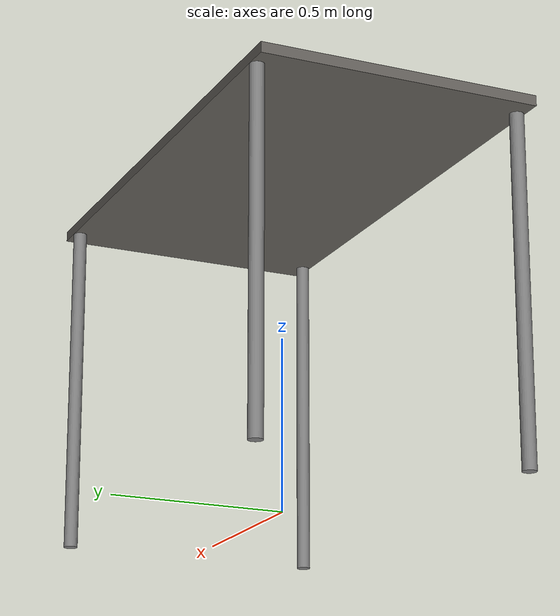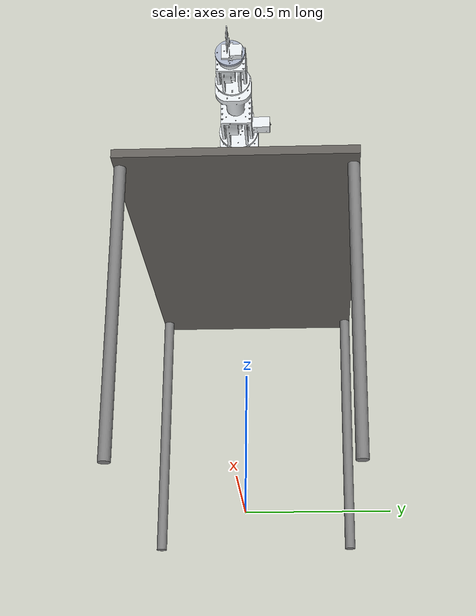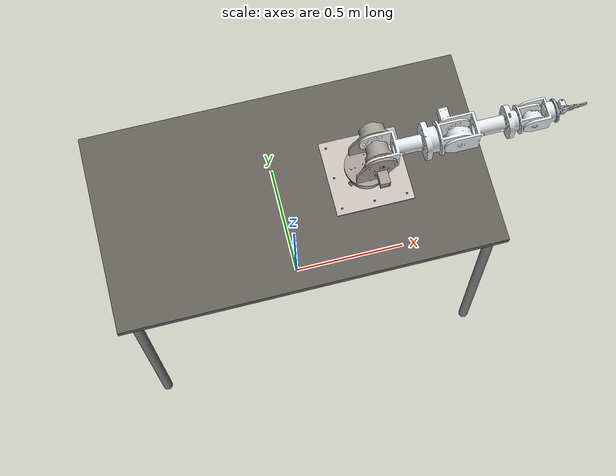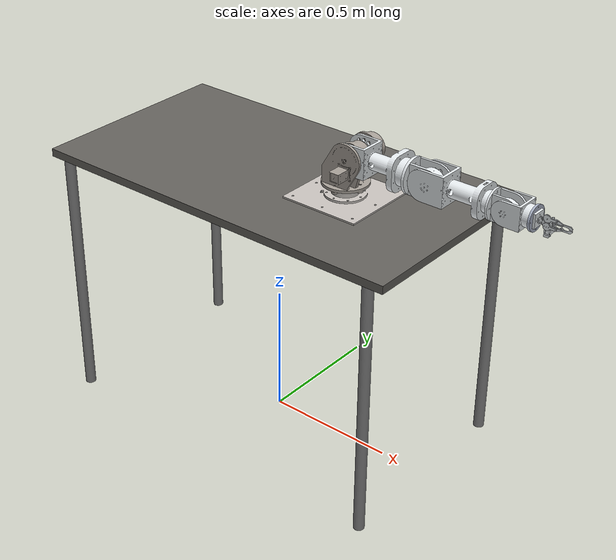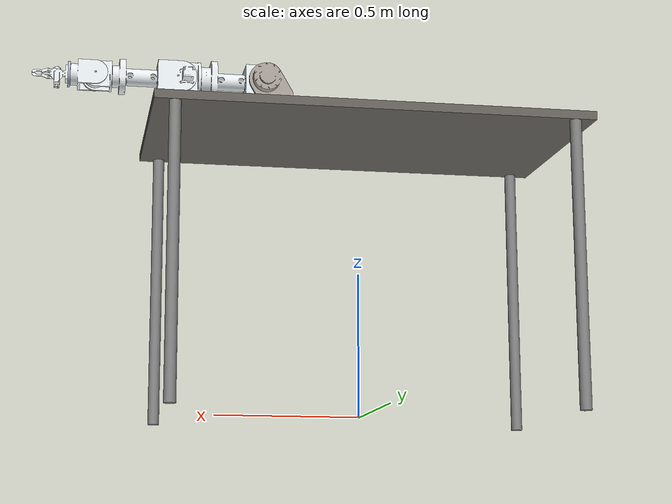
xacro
<?xml version="1.0" encoding="utf-8"?>

<robot xmlns:xacro="http://www.ros.org/wiki/xacro" name="daadbot">

  <xacro:arg name="is_sim" default="true"/>

  <xacro:arg name = "is_ignition" default="true"/>

  <xacro:include filename = "$(find daadbot_desc)/urdf/urdf_table_effort/daadbot_gazebo.xacro"/>
  <xacro:include filename = "$(find daadbot_desc)/urdf/urdf_table_effort/daadbot_ros2_control.xacro"/>
  <xacro:include filename = "$(find daadbot_desc)/urdf/urdf_table_effort/table.xacro"/>

  <xacro:property name='PI' value='3.141592653589793'/>
  <xacro:property name='velocity' value='20.0'/>
  <xacro:property name='effort' value='200.0'/>

  <link name="world"/>

  <!-- Attach the Table to the World -->
  <joint name="table_joint" type="fixed">
    <parent link="world"/>
    <child link="table_top"/>
    <origin xyz="0 0 0" rpy="0 0 0"/> <!-- Adjust height of table -->
  </joint>

  <!-- Attach Daadbot to the Table -->
  <joint name="base_joint" type="fixed">
    <parent link="table_top"/>
    <child link="base_link"/>
    <origin xyz="0.3 0 1.017" rpy="0 0 0"/> <!-- Adjust position of the robot on the table -->
  </joint>
  <link
    name="base_link">
    <inertial>
      <origin
        xyz="-0.00246645540256236 -0.00131466478904116 0.00320374562257973"
        rpy="0 0 0" />
      <mass
        value="6.91122989464636" />
      <inertia
        ixx="0.0466171750852481"
        ixy="0.00010076855342015"
        ixz="5.14819747192778E-08"
        iyy="0.0464821203083076"
        iyz="-1.44621889265211E-07"
        izz="0.0929840869855057" />
    </inertial>
    <visual>
      <origin
        xyz="0 0 0"
        rpy="0 0 0" />
      <geometry>
        <mesh
          filename="package://daadbot_desc/meshes/base_link.STL" />
      </geometry>
      <material
        name="">
        <color
          rgba="0.776470588235294 0.756862745098039 0.737254901960784 1" />
      </material>
    </visual>
    <collision>
      <origin
        xyz="0 0 0"
        rpy="0 0 0" />
      <geometry>
        <mesh
          filename="package://daadbot_desc/meshes/base_link.STL" />
      </geometry>
    </collision>
  </link>
  <link
    name="Link_1">
    <inertial>
      <origin
        xyz="0.0222146013900772 2.73568109690481E-06 0.0747841784291177"
        rpy="0 0 0" />
      <mass
        value="2.34948803406793" />
      <inertia
        ixx="0.00332922517000865"
        ixy="1.64875308454708E-07"
        ixz="-0.000433929392474112"
        iyy="0.00524724735039028"
        iyz="2.38505609352415E-07"
        izz="0.00419520671173006" />
    </inertial>
    <visual>
      <origin
        xyz="0 0 0"
        rpy="0 0 0" />
      <geometry>
        <mesh
          filename="package://daadbot_desc/meshes/Link_1.STL" />
      </geometry>
      <material
        name="">
        <color
          rgba="0.647058823529412 0.619607843137255 0.588235294117647 1" />
      </material>
    </visual>
    <collision>
      <origin
        xyz="0 0 0"
        rpy="0 0 0" />
      <geometry>
        <mesh
          filename="package://daadbot_desc/meshes/Link_1.STL" />
      </geometry>
    </collision>
  </link>
  <joint
    name="joint_1"
    type="revolute">
    <origin
      xyz="-0.0029638 -0.0015759 0.04796"
      rpy="0 0 0" />
    <parent
      link="base_link" />
    <child
      link="Link_1" />
    <axis
      xyz="0 0 -1" />
    <limit
      lower="-0.1"
      upper="3.2"
      effort="${effort}"
      velocity="12.776" />
  </joint>
  <link
    name="Link_2">
    <inertial>
      <origin
        xyz="0.121210588587965 0.000230649813345946 -0.049540637756618"
        rpy="0 0 0" />
      <mass
        value="2.24401700155026" />
      <inertia
        ixx="0.00389001580470153"
        ixy="1.8291659115195E-06"
        ixz="2.04233321611583E-07"
        iyy="0.00259728697678572"
        iyz="3.29392581309982E-08"
        izz="0.00312685277067708" />
    </inertial>
    <visual>
      <origin
        xyz="0 0 0"
        rpy="0 0 0" />
      <geometry>
        <mesh
          filename="package://daadbot_desc/meshes/Link_2.STL" />
      </geometry>
      <material
        name="">
        <color
          rgba="0.898039215686275 0.917647058823529 0.929411764705882 1" />
      </material>
    </visual>
    <collision>
      <origin
        xyz="0 0 0"
        rpy="0 0 0" />
      <geometry>
        <mesh
          filename="package://daadbot_desc/meshes/Link_2.STL" />
      </geometry>
    </collision>
  </link>
  <joint
    name="joint_2"
    type="revolute">
    <origin
      xyz="0.0400000000000002 -0.050000000000002 0.114463048454132"
      rpy="1.5707963267949 0 0" />
    <parent
      link="Link_1" />
    <child
      link="Link_2" />
    <axis
      xyz="0 0 -1" />
    <limit
      lower="-3.4907"
      upper="0.5236"
      effort="${effort}"
      velocity="12.776" />
  </joint>

  <link
    name="Link_3">
    <inertial>
      <origin
        xyz="-0.00448997206818821 -2.34751712904213E-05 0.0488571768392556"
        rpy="0 0 0" />
      <mass
        value="1.2718719681393" />
      <inertia
        ixx="0.00206983011422612"
        ixy="9.27500479472452E-08"
        ixz="3.38378548754623E-06"
        iyy="0.00129565231901482"
        iyz="2.88989653562542E-07"
        izz="0.00156994991003151" />
    </inertial>
    <visual>
      <origin
        xyz="0 0 0"
        rpy="0 0 0" />
      <geometry>
        <mesh
          filename="package://daadbot_desc/meshes/Link_3.STL" />
      </geometry>
      <material
        name="">
        <color
          rgba="0.898039215686275 0.917647058823529 0.929411764705882 1" />
      </material>
    </visual>
    <collision>
      <origin
        xyz="0 0 0"
        rpy="0 0 0" />
      <geometry>
        <mesh
          filename="package://daadbot_desc/meshes/Link_3.STL" />
      </geometry>
    </collision>
  </link>
  <joint
    name="joint_3"
    type="revolute">
    <origin
      xyz="0.234499999999998 0 -0.0495000000000002"
      rpy="0 1.5707963267949 0" />
    <parent
      link="Link_2" />
    <child
      link="Link_3" />
    <axis
      xyz="0 0 -1" />
    <limit
      lower="-0.1"
      upper="3.2"
      effort="${effort}"
      velocity="12.776" />
  </joint>
  <link
    name="Link_4">
    <inertial>
      <origin
        xyz="-0.119169680650385 -0.000128811902195713 0.0378163924527294"
        rpy="0 0 0" />
      <mass
        value="2.67615775175726" />
      <inertia
        ixx="0.00308017562479927"
        ixy="2.47453551729311E-06"
        ixz="-7.09348932448939E-07"
        iyy="0.00238129778603005"
        iyz="-7.47320677385655E-07"
        izz="0.00293128138362422" />
    </inertial>
    <visual>
      <origin
        xyz="0 0 0"
        rpy="0 0 0" />
      <geometry>
        <mesh
          filename="package://daadbot_desc/meshes/Link_4.STL" />
      </geometry>
      <material
        name="">
        <color
          rgba="0.898039215686275 0.917647058823529 0.929411764705882 1" />
      </material>
    </visual>
    <collision>
      <origin
        xyz="0 0 0"
        rpy="0 0 0" />
      <geometry>
        <mesh
          filename="package://daadbot_desc/meshes/Link_4.STL" />
      </geometry>
    </collision>
  </link>
  <joint
    name="joint_4"
    type="revolute">
    <origin
      xyz="-0.0324999999999996 0 0.0750000000000004"
      rpy="0 1.5707963267949 0" />
    <parent
      link="Link_3" />
    <child
      link="Link_4" />
    <axis
      xyz="0 0 -1" />
    <limit
      lower="-1.9199"
      upper="1.9199"
      effort="${effort}"
      velocity="12.77581" />
  </joint>
  <link
    name="Link_5">
    <inertial>
      <origin
        xyz="0.00685541523757274 3.79292913340323E-05 0.0488580132405974"
        rpy="0 0 0" />
      <mass
        value="1.29018300951353" />
      <inertia
        ixx="0.00112308173661534"
        ixy="1.28316182440177E-06"
        ixz="-8.91005390036956E-07"
        iyy="0.000690097277055795"
        iyz="-3.23958303943101E-07"
        izz="0.000815216487439054" />
    </inertial>
    <visual>
      <origin
        xyz="0 0 0"
        rpy="0 0 0" />
      <geometry>
        <mesh
          filename="package://daadbot_desc/meshes/Link_5.STL" />
      </geometry>
      <material
        name="">
        <color
          rgba="0.898039215686275 0.917647058823529 0.929411764705882 1" />
      </material>
    </visual>
    <collision>
      <origin
        xyz="0 0 0"
        rpy="0 0 0" />
      <geometry>
        <mesh
          filename="package://daadbot_desc/meshes/Link_5.STL" />
      </geometry>
    </collision>
  </link>
  <joint
    name="joint_5"
    type="revolute">
    <origin
      xyz="-0.2284999036789 0 0.0330000000000004"
      rpy="3.14159265358979 1.5707963267949 0" />
    <parent
      link="Link_4" />
    <child
      link="Link_5" />
    <axis
      xyz="0 0 -1" />
    <limit
      lower="-0.1"
      upper="3.4"
      effort="15"
      velocity="19.896753" />
  </joint>
  <link
    name="Link_6">
    <inertial>
      <origin
        xyz="-0.0534048711825299 4.35092388909042E-05 0.0268001409986631"
        rpy="0 0 0" />
      <mass
        value="1.30596061805535" />
      <inertia
        ixx="0.000961791856097317"
        ixy="1.00752377127578E-06"
        ixz="-2.55794494605017E-06"
        iyy="0.000676134530899485"
        iyz="-2.71811927605635E-06"
        izz="0.00084422746855334" />
    </inertial>
    <visual>
      <origin
        xyz="0 0 0"
        rpy="0 0 0" />
      <geometry>
        <mesh
          filename="package://daadbot_desc/meshes/link_6.STL" />
      </geometry>
      <material
        name="">
        <color
          rgba="0.898039215686275 0.917647058823529 0.929411764705882 1" />
      </material>
    </visual>
    <collision>
      <origin
        xyz="0 0 0"
        rpy="0 0 0" />
      <geometry>
        <mesh
          filename="package://daadbot_desc/meshes/link_6.STL" />
      </geometry>
    </collision>
  </link>
  <joint
    name="joint_6"
    type="revolute">
    <origin
      xyz="0.0265000104908596 0 0.0575000000000075"
      rpy="3.14159265358979 1.5707963267949 0" />
    <parent
      link="Link_5" />
    <child
      link="Link_6" />
    <axis
      xyz="0 0 -1" />
    <limit
      lower="-1.5708"
      upper="1.5708"
      effort="15"
      velocity="19.897" />
  </joint>
  <link
    name="Link_7">
    <inertial>
      <origin
        xyz="-1.22738236721376E-06 1.16355040356286E-05 -0.00396913177271019"
        rpy="0 0 0" />
      <mass
        value="0.131686510129341" />
      <inertia
        ixx="6.91193962095496E-05"
        ixy="1.32697088081543E-10"
        ixz="8.85654326869473E-10"
        iyy="6.91388743027247E-05"
        iyz="2.09447730326603E-11"
        izz="0.000136853375303708" />
    </inertial>
    <visual>
      <origin
        xyz="0 0 0"
        rpy="0 0 0" />
      <geometry>
        <mesh
          filename="package://daadbot_desc/meshes/Link_7.STL" />
      </geometry>
      <material
        name="">
        <color
          rgba="0.666666666666667 0.698039215686274 0.768627450980392 1" />
      </material>
    </visual>
    <collision>
      <origin
        xyz="0 0 0"
        rpy="0 0 0" />
      <geometry>
        <mesh
          filename="package://daadbot_desc/meshes/Link_7.STL" />
      </geometry>
    </collision>
  </link>
  <joint
    name="joint_7"
    type="revolute">
    <origin
      xyz="-0.0864999036793499 0 0.0280000000004628"
      rpy="0 1.5707963267949 0" />
    <parent
      link="Link_6" />
    <child
      link="Link_7" />
    <axis
      xyz="0 0 -1" />
    <limit
      lower="-0.1"
      upper="3.4"
      effort="15"
      velocity="19.897" />
  </joint>
  <link
    name="endeffector">
    <inertial>
      <origin
        xyz="0.0115230217195728 -0.0136127070797983 0.0256571894660979"
        rpy="0 0 0" />
      <mass
        value="0.154057788286255" />
      <inertia
        ixx="3.1964247663854E-05"
        ixy="1.07138220152465E-07"
        ixz="4.30086683390955E-12"
        iyy="2.53636526523542E-05"
        iyz="-9.8230347105402E-08"
        izz="4.73802906093003E-05" />
    </inertial>
    <visual>
      <origin
        xyz="0 0 0"
        rpy="0 0 0" />
      <geometry>
        <mesh
          filename="package://daadbot_desc/meshes/endeffector.STL" />
      </geometry>
      <material
        name="">
        <color
          rgba="0.898039215686275 0.917647058823529 0.929411764705882 1" />
      </material>
    </visual>
    <collision>
      <origin
        xyz="0 0 0"
        rpy="0 0 0" />
      <geometry>
        <mesh
          filename="package://daadbot_desc/meshes/endeffector.STL" />
      </geometry>
    </collision>
  </link>
  <joint
    name="endeffector_joint"
    type="fixed">
    <origin
      xyz="0 0 -0.00799999999954315"
      rpy="3.14159265357033 0 -3.14159265358979" />
    <parent
      link="Link_7" />
    <child
      link="endeffector" />
    <axis
      xyz="0 0 0" />
  </joint>
  <link
    name="gear1">
    <inertial>
      <origin
        xyz="-0.00580763486929181 0.000405747920981692 -0.00150000000000011"
        rpy="0 0 0" />
      <mass
        value="0.00530003886474417" />
      <inertia
        ixx="1.81056909473447E-07"
        ixy="-3.82652046422796E-08"
        ixz="2.51961968784482E-22"
        iyy="7.53619126673464E-07"
        iyz="-2.84205585058754E-24"
        izz="9.26725977849795E-07" />
    </inertial>
    <visual>
      <origin
        xyz="0 0 0"
        rpy="0 0 0" />
      <geometry>
        <mesh
          filename="package://daadbot_desc/meshes/gear1.STL" />
      </geometry>
      <material
        name="">
        <color
          rgba="0.898039215686275 0.917647058823529 0.929411764705882 1" />
      </material>
    </visual>
    <collision>
      <origin
        xyz="0 0 0"
        rpy="0 0 0" />
      <geometry>
        <mesh
          filename="package://daadbot_desc/meshes/gear1.STL" />
      </geometry>
    </collision>
  </link>
  <joint
    name="gear1_joint"
    type="revolute">
    <origin
      xyz="-0.00375000000000747 -0.013499999998183 0.0376789689084349"
      rpy="0 1.5707963267949 0" />
    <parent
      link="endeffector" />
    <child
      link="gear1" />
    <axis
      xyz="0 0 -1" />
    <limit
      lower="-0.9"
      upper="0"
      effort="5"
      velocity="10" />
  </joint>
  <link
    name="gear1_claw">
    <inertial>
      <origin
        xyz="0.023445421809937 0.00521555935278548 -0.0014999999999977"
        rpy="0 0 0" />
      <mass
        value="0.00393743096892517" />
      <inertia
        ixx="6.08354279127517E-08"
        ixy="-1.63551242432612E-07"
        ixz="1.2492000495084E-21"
        iyy="1.21174464720854E-06"
        iyz="1.75066929433463E-22"
        izz="1.26667392866791E-06" />
    </inertial>
    <visual>
      <origin
        xyz="0 0 0"
        rpy="0 0 0" />
      <geometry>
        <mesh
          filename="package://daadbot_desc/meshes/gear1_claw.STL" />
      </geometry>
      <material
        name="">
        <color
          rgba="0.898039215686275 0.917647058823529 0.929411764705882 1" />
      </material>
    </visual>
    <collision>
      <origin
        xyz="0 0 0"
        rpy="0 0 0" />
      <geometry>
        <mesh
          filename="package://daadbot_desc/meshes/gear1_claw.STL" />
      </geometry>
    </collision>
  </link>
  <joint
    name="claw_joint1"
    type="revolute">
    <origin
      xyz="-0.0309835156221249 -0.00101082129116717 0"
      rpy="3.14159265358979 0 3.14159265358979" />
    <parent
      link="gear1" />
    <child
      link="gear1_claw" />
    <axis
      xyz="0 0 1" />
    <limit
      lower="0"
      upper="0.9"
      effort="5"
      velocity="10" />
    <mimic
      joint="base_claw_joint1"
      multiplier="1"
      offset="0" />
  </joint>
  <link
    name="gear2_link">
    <inertial>
      <origin
        xyz="-0.00530290196064154 0.000153715606715232 -0.00375000000000136"
        rpy="0 0 0" />
      <mass
        value="0.00576363113945472" />
      <inertia
        ixx="2.15932056711738E-07"
        ixy="1.70682493885657E-08"
        ixz="-3.42106080174724E-22"
        iyy="8.04260102723523E-07"
        iyz="-8.82852580465177E-23"
        izz="1.01154671272608E-06" />
    </inertial>
    <visual>
      <origin
        xyz="0 0 0"
        rpy="0 0 0" />
      <geometry>
        <mesh
          filename="package://daadbot_desc/meshes/gear2_link.STL" />
      </geometry>
      <material
        name="">
        <color
          rgba="0.898039215686275 0.917647058823529 0.929411764705882 1" />
      </material>
    </visual>
    <collision>
      <origin
        xyz="0 0 0"
        rpy="0 0 0" />
      <geometry>
        <mesh
          filename="package://daadbot_desc/meshes/gear2_link.STL" />
      </geometry>
    </collision>
  </link>
  <joint
    name="gear2_joint"
    type="revolute">
    <origin
      xyz="-0.00149999999999997 0.0134999999992435 0.0376789689087047"
      rpy="0 1.5707963267949 0" />
    <parent
      link="endeffector" />
    <child
      link="gear2_link" />
    <axis
      xyz="0 0 -1" />
    <limit
      lower="-0.9"
      upper="0.9"
      effort="5"
      velocity="10" />
    <mimic
      joint="gear1_joint"
      multiplier="-1"
      offset="0" />
  </joint>
  <link
    name="gear2_claw">
    <inertial>
      <origin
        xyz="0.0234454486039199 -0.00521543889748319 -0.00149999999999889"
        rpy="0 0 0" />
      <mass
        value="0.00393743096892518" />
      <inertia
        ixx="6.0833747461621E-08"
        ixy="1.63545329654284E-07"
        ixz="1.24391026243428E-21"
        iyy="1.21174632765968E-06"
        iyz="-1.76544893665412E-22"
        izz="1.26667392866792E-06" />
    </inertial>
    <visual>
      <origin
        xyz="0 0 0"
        rpy="0 0 0" />
      <geometry>
        <mesh
          filename="package://daadbot_desc/meshes/gear2_claw.STL" />
      </geometry>
      <material
        name="">
        <color
          rgba="0.898039215686275 0.917647058823529 0.929411764705882 1" />
      </material>
    </visual>
    <collision>
      <origin
        xyz="0 0 0"
        rpy="0 0 0" />
      <geometry>
        <mesh
          filename="package://daadbot_desc/meshes/gear2_claw.STL" />
      </geometry>
    </collision>
  </link>
  <joint
    name="claw_joint2"
    type="revolute">
    <origin
      xyz="-0.0309869843208653 0.000898221965043244 -0.00225000000000025"
      rpy="-3.14159265358979 0 -3.14159265358979" />
    <parent
      link="gear2_link" />
    <child
      link="gear2_claw" />
    <axis
      xyz="0 0 1" />
    <limit
      lower="-0.9"
      upper="0"
      effort="5"
      velocity="10" />
    <mimic
      joint="base_claw_joint2"
      multiplier="-1"
      offset="0" />
  </joint>
  <link
    name="base_claw_link2">
    <inertial>
      <origin
        xyz="0.0154933084655396 0.000455403986549585 0.00375000000000131"
        rpy="0 0 0" />
      <mass
        value="0.00110418822863694" />
      <inertia
        ixx="3.26224455905998E-09"
        ixy="-4.45032069336059E-09"
        ixz="1.4396798294983E-22"
        iyy="1.54535887182587E-07"
        iyz="2.999466098399E-24"
        izz="1.56149541453459E-07" />
    </inertial>
    <visual>
      <origin
        xyz="0 0 0"
        rpy="0 0 0" />
      <geometry>
        <mesh
          filename="package://daadbot_desc/meshes/base_claw_link2.STL" />
      </geometry>
      <material
        name="">
        <color
          rgba="0.898039215686275 0.917647058823529 0.929411764705882 1" />
      </material>
    </visual>
    <collision>
      <origin
        xyz="0 0 0"
        rpy="0 0 0" />
      <geometry>
        <mesh
          filename="package://daadbot_desc/meshes/base_claw_link2.STL" />
      </geometry>
    </collision>
  </link>
  <joint
    name="base_claw_joint2"
    type="revolute">
    <origin
      xyz="0.00149999999999995 0.00524999999997672 -0.066078968907985"
      rpy="0 1.5707963267949 0" />
    <parent
      link="Link_7" />
    <child
      link="base_claw_link2" />
    <axis
      xyz="0 0 1" />
    <limit
      lower="0"
      upper="0.9"
      effort="5"
      velocity="10" />
    <mimic
      joint="gear1_joint"
      multiplier="-1"
      offset="0" />
  </joint>
  <link
    name="base_claw_link1">
    <inertial>
      <origin
        xyz="0.0154915529566088 -0.000511651241238725 0.00375000000000239"
        rpy="0 0 0" />
      <mass
        value="0.00110418822863695" />
      <inertia
        ixx="3.29655315677714E-09"
        ixy="4.99941634031931E-09"
        ixz="2.46402439239775E-22"
        iyy="1.54501578584872E-07"
        iyz="-9.36354721708262E-24"
        izz="1.56149541453461E-07" />
    </inertial>
    <visual>
      <origin
        xyz="0 0 0"
        rpy="0 0 0" />
      <geometry>
        <mesh
          filename="package://daadbot_desc/meshes/base_claw_link1.STL" />
      </geometry>
      <material
        name="">
        <color
          rgba="0.898039215686275 0.917647058823529 0.929411764705882 1" />
      </material>
    </visual>
    <collision>
      <origin
        xyz="0 0 0"
        rpy="0 0 0" />
      <geometry>
        <mesh
          filename="package://daadbot_desc/meshes/base_claw_link1.STL" />
      </geometry>
    </collision>
  </link>
  <joint
    name="base_claw_joint1"
    type="revolute">
    <origin
      xyz="0.00149999999999995 -0.00525000000002329 -0.066078968907985"
      rpy="0 1.5707963267949 0" />
    <parent
      link="Link_7" />
    <child
      link="base_claw_link1" />
    <axis
      xyz="0 0 -1" />
    <limit
      lower="0"
      upper="0.9"
      effort="5"
      velocity="10" />
    <mimic
      joint="gear1_joint"
      multiplier="-1"
      offset="0" />
  </joint>
</robot>

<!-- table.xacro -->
<robot name="table" xmlns:xacro="http://www.ros.org/wiki/xacro">

  <!-- Table Top -->
  <link name="table_top">
    <visual>
      <origin xyz="0 0 1.0"/>
      <geometry>
        <box size="1.5 0.8 0.03"/>
      </geometry>
      <material name="">
        <color rgba="0.388 0.376 0.357 1"/>
      </material>
    </visual>
    <collision>
      <origin xyz="0 0 1.0"/>
      <geometry>
        <box size="1.5 0.8 0.03"/>
      </geometry>
    </collision>
    <inertial>
      <origin xyz="0 0 1.0"/>
      <mass value="5.0"/>
      <inertia ixx="0.1" ixy="0" ixz="0" iyy="0.1" iyz="0" izz="0.1"/>
    </inertial>
  </link>

  <!-- Table Legs Macro -->
  <xacro:macro name="table_leg" params="leg_name x y">
    <link name="${leg_name}">
      <visual>
        <origin xyz="0 0 0.5"/>
        <geometry>
          <cylinder radius="0.02" length="1.0"/>
        </geometry>
        <material name="">
          <color rgba="0.5 0.5 0.5 1"/>
        </material>
      </visual>
      <collision>
        <origin xyz="0 0 0.5"/>
        <geometry>
          <cylinder radius="0.02" length="1.0"/>
        </geometry>
      </collision>
      <inertial>
        <origin xyz="0 0 0.5"/>
        <mass value="1.0"/>
        <inertia ixx="0.01" ixy="0" ixz="0" iyy="0.01" iyz="0" izz="0.01"/>
      </inertial>
    </link>

    <joint name="${leg_name}_joint" type="fixed">
      <parent link="table_top"/>
      <child link="${leg_name}"/>
      <origin xyz="${x} ${y} 0.0"/>
    </joint>
  </xacro:macro>

  <!-- Four Legs -->
  <xacro:table_leg leg_name="front_left_leg"  x=" 0.68" y=" 0.38"/>
  <xacro:table_leg leg_name="front_right_leg" x=" 0.68" y="-0.38"/>
  <xacro:table_leg leg_name="back_left_leg"   x="-0.68" y=" 0.38"/>
  <xacro:table_leg leg_name="back_right_leg"  x="-0.68" y="-0.38"/>

</robot>
